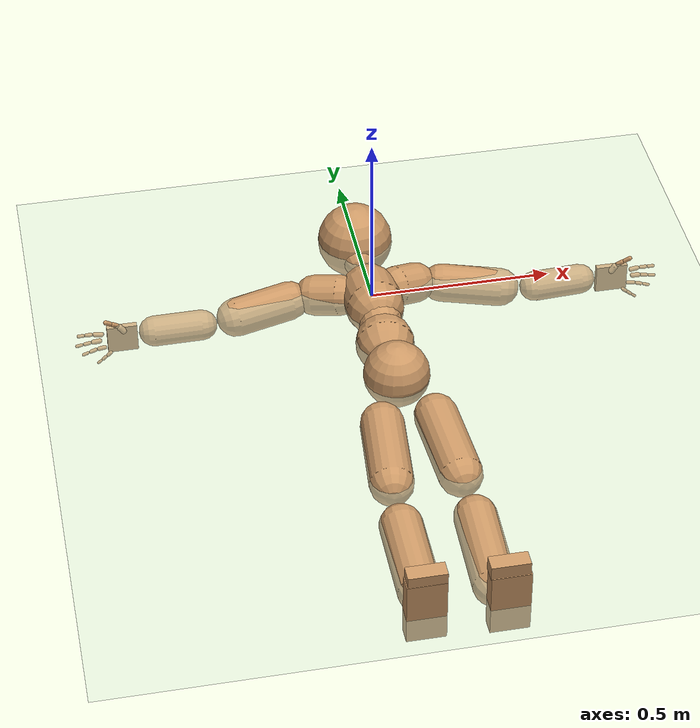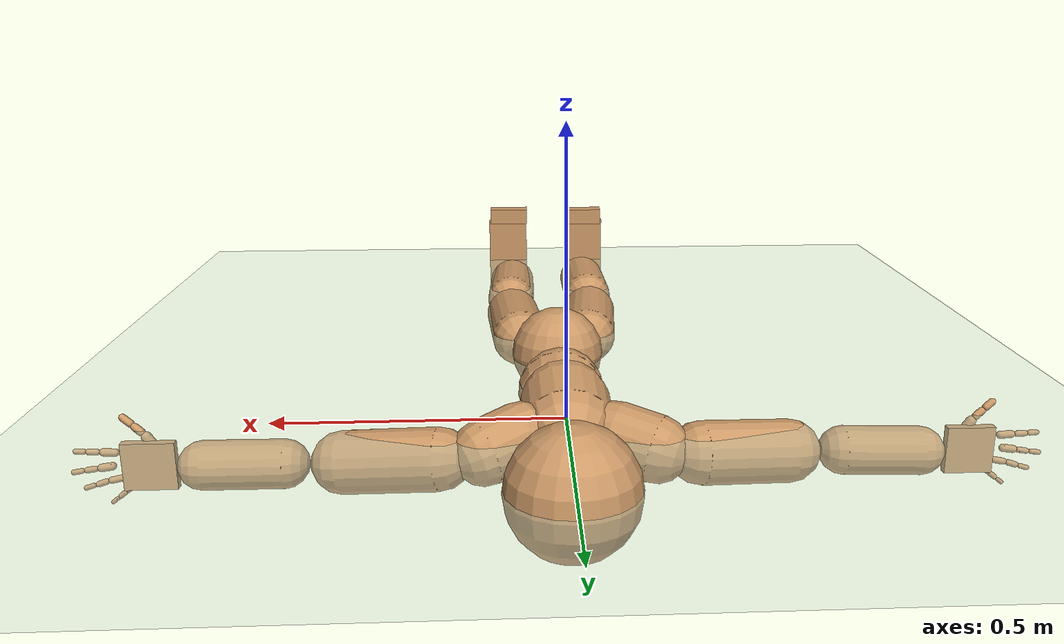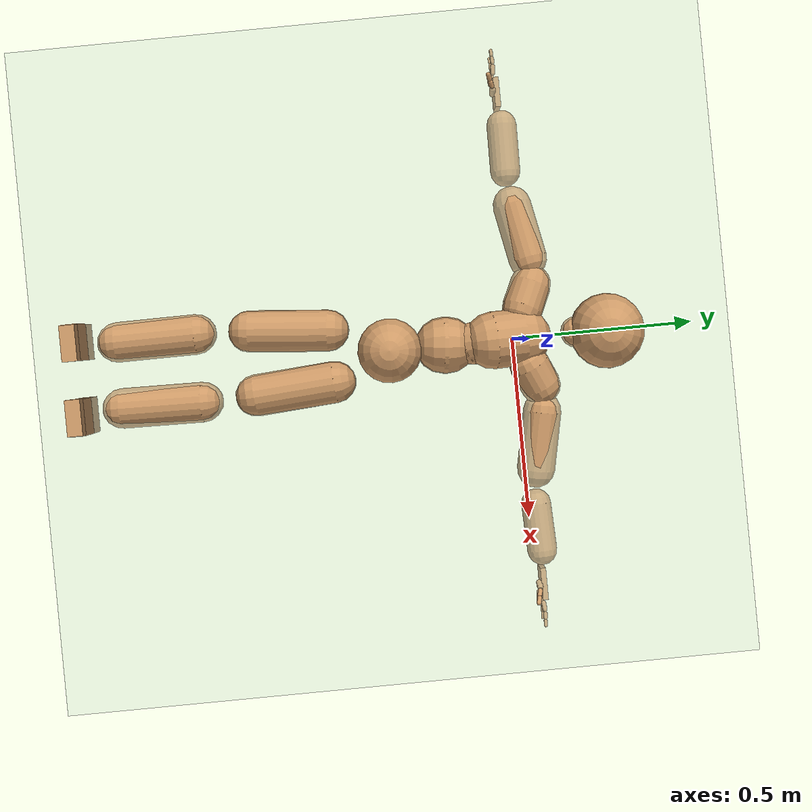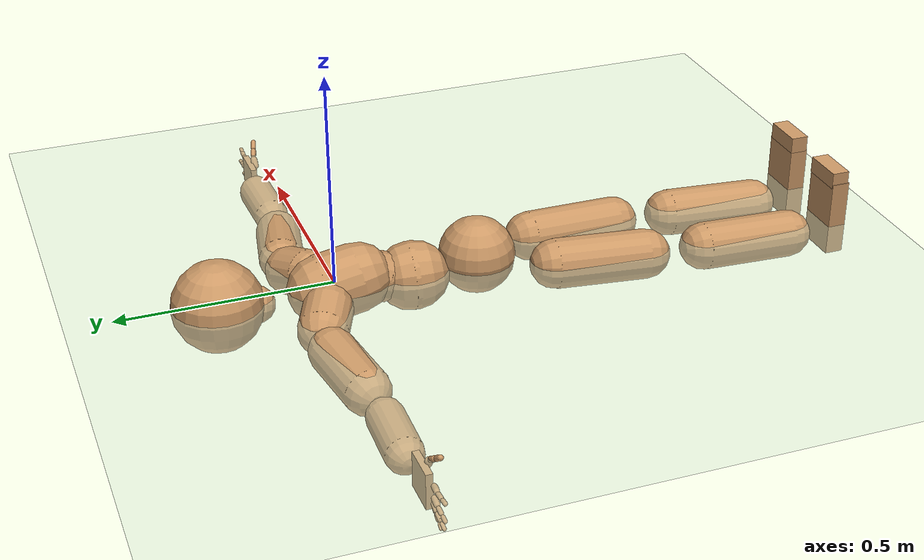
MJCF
<?xml version='1.0' encoding='utf-8'?>
<mujoco model="smplx_mapped_s79">
  <compiler coordinate="local" />
  <default>
    <joint damping="0.0" armature="0.01" stiffness="0.0" limited="true" />
    <geom conaffinity="1" condim="3" contype="7" margin="0.001" rgba="0.8 0.6 .4 1" />
  </default>
  <asset>
    <texture type="skybox" builtin="gradient" rgb1=".4 .5 .6" rgb2="0 0 0" width="100" height="100" />
    <texture builtin="flat" height="1278" mark="cross" markrgb="1 1 1" name="texgeom" random="0.01" rgb1="0.8 0.6 0.4" rgb2="0.8 0.6 0.4" type="cube" width="127" />
    <texture builtin="checker" height="100" name="texplane" rgb1="0 0 0" rgb2="0.8 0.8 0.8" type="2d" width="100" />
    <material name="MatPlane" reflectance="0.5" shininess="1" specular="1" texrepeat="60 60" texture="texplane" />
    <material name="geom" texture="texgeom" texuniform="true" />
  </asset>
  <worldbody>
    <light cutoff="100" diffuse="1 1 1" dir="-0 0 -1.3" directional="true" exponent="1" pos="0 0 1.3" specular=".1 .1 .1" />
    <geom conaffinity="1" condim="3" name="floor" pos="0 0 0" rgba="0.8 0.9 0.8 1" size="100 100 .2" type="plane" material="MatPlane" />
    <body name="Pelvis" pos="0.0005 -0.3426 0.0059">
      <freejoint name="Pelvis" />
      <geom type="sphere" contype="1" conaffinity="1" density="4629.6296296296305" size="0.09" pos="0.0000 0.0000 0.0000" name="Pelvis" />
      <body name="L_Hip" pos="0.0672 -0.0860 -0.0167">
        <joint name="L_Hip_x" type="hinge" pos="0 0 0" axis="1 0 0" stiffness="800" damping="80" armature="0.02" range="-150.00 150.00" />
        <joint name="L_Hip_y" type="hinge" pos="0 0 0" axis="0 1 0" stiffness="800" damping="80" armature="0.02" range="-150.00 150.00" />
        <joint name="L_Hip_z" type="hinge" pos="0 0 0" axis="0 0 1" stiffness="800" damping="80" armature="0.02" range="-150.00 150.00" />
        <geom type="capsule" contype="1" conaffinity="1" density="2040.816327" fromto="0.0055 -0.0745 -0.0031 0.0221 -0.2980 -0.0124" size="0.059" />
        <body name="L_Knee" pos="0.0277 -0.3725 -0.0155">
          <joint name="L_Knee_x" type="hinge" pos="0 0 0" axis="1 0 0" stiffness="800" damping="80" armature="0.02" range="-150.00 150.00" />
          <joint name="L_Knee_y" type="hinge" pos="0 0 0" axis="0 1 0" stiffness="800" damping="80" armature="0.02" range="-150.00 150.00" />
          <joint name="L_Knee_z" type="hinge" pos="0 0 0" axis="0 0 1" stiffness="800" damping="80" armature="0.02" range="-150.00 150.00" />
          <geom type="capsule" contype="1" conaffinity="1" density="1234.567901" fromto="-0.0012 -0.0766 -0.0036 -0.0049 -0.3063 -0.0144" size="0.0564" />
          <body name="L_Ankle" pos="-0.0061 -0.3829 -0.0180">
            <joint name="L_Ankle_x" type="hinge" pos="0 0 0" axis="1 0 0" stiffness="800" damping="80" armature="0.02" range="-150.00 150.00" />
            <joint name="L_Ankle_y" type="hinge" pos="0 0 0" axis="0 1 0" stiffness="800" damping="80" armature="0.02" range="-150.00 150.00" />
            <joint name="L_Ankle_z" type="hinge" pos="0 0 0" axis="0 0 1" stiffness="800" damping="80" armature="0.02" range="-150.00 150.00" />
            <geom type="box" contype="1" conaffinity="1" density="1000" pos="0.0115 -0.0234 0.0566" size="0.0502 0.0216 0.0909" quat="1.0000 0.0000 0.0000 0.0000" />
            <body name="L_Toe" pos="0.0205 -0.0442 0.1058">
              <joint name="L_Toe_x" type="hinge" pos="0 0 0" axis="1 0 0" stiffness="500" damping="50" armature="0.02" range="-150.00 150.00" />
              <joint name="L_Toe_y" type="hinge" pos="0 0 0" axis="0 1 0" stiffness="500" damping="50" armature="0.02" range="-150.00 150.00" />
              <joint name="L_Toe_z" type="hinge" pos="0 0 0" axis="0 0 1" stiffness="500" damping="50" armature="0.02" range="-150.00 150.00" />
              <geom type="box" contype="1" conaffinity="1" density="1000" pos="-0.0115 0.0227 0.0576" size="0.0493 0.0209 0.0194" quat="1.0000 0.0000 0.0000 0.0000" />
            </body>
          </body>
        </body>
      </body>
      <body name="R_Hip" pos="-0.0662 -0.0927 -0.0177">
        <joint name="R_Hip_x" type="hinge" pos="0 0 0" axis="1 0 0" stiffness="800" damping="80" armature="0.02" range="-150.00 150.00" />
        <joint name="R_Hip_y" type="hinge" pos="0 0 0" axis="0 1 0" stiffness="800" damping="80" armature="0.02" range="-150.00 150.00" />
        <joint name="R_Hip_z" type="hinge" pos="0 0 0" axis="0 0 1" stiffness="800" damping="80" armature="0.02" range="-150.00 150.00" />
        <geom type="capsule" contype="1" conaffinity="1" density="2040.816327" fromto="-0.0063 -0.0736 -0.0020 -0.0253 -0.2944 -0.0081" size="0.0588" />
        <body name="R_Knee" pos="-0.0316 -0.3681 -0.0102">
          <joint name="R_Knee_x" type="hinge" pos="0 0 0" axis="1 0 0" stiffness="800" damping="80" armature="0.02" range="-150.00 150.00" />
          <joint name="R_Knee_y" type="hinge" pos="0 0 0" axis="0 1 0" stiffness="800" damping="80" armature="0.02" range="-150.00 150.00" />
          <joint name="R_Knee_z" type="hinge" pos="0 0 0" axis="0 0 1" stiffness="800" damping="80" armature="0.02" range="-150.00 150.00" />
          <geom type="capsule" contype="1" conaffinity="1" density="1234.567901" fromto="0.0003 -0.0749 -0.0028 0.0012 -0.2995 -0.0111" size="0.0564" />
          <body name="R_Ankle" pos="0.0015 -0.3744 -0.0139">
            <joint name="R_Ankle_x" type="hinge" pos="0 0 0" axis="1 0 0" stiffness="800" damping="80" armature="0.02" range="-150.00 150.00" />
            <joint name="R_Ankle_y" type="hinge" pos="0 0 0" axis="0 1 0" stiffness="800" damping="80" armature="0.02" range="-150.00 150.00" />
            <joint name="R_Ankle_z" type="hinge" pos="0 0 0" axis="0 0 1" stiffness="800" damping="80" armature="0.02" range="-150.00 150.00" />
            <geom type="box" contype="1" conaffinity="1" density="1000" pos="-0.0091 -0.0250 0.0535" size="0.0502 0.0216 0.0909" quat="1.0000 0.0000 0.0000 0.0000" />
            <body name="R_Toe" pos="-0.0164 -0.0479 0.0996">
              <joint name="R_Toe_x" type="hinge" pos="0 0 0" axis="1 0 0" stiffness="500" damping="50" armature="0.02" range="-150.00 150.00" />
              <joint name="R_Toe_y" type="hinge" pos="0 0 0" axis="0 1 0" stiffness="500" damping="50" armature="0.02" range="-150.00 150.00" />
              <joint name="R_Toe_z" type="hinge" pos="0 0 0" axis="0 0 1" stiffness="500" damping="50" armature="0.02" range="-150.00 150.00" />
              <geom type="box" contype="1" conaffinity="1" density="1000" pos="0.0091 0.0243 0.0545" size="0.0493 0.0209 0.0194" quat="1.0000 0.0000 0.0000 0.0000" />
            </body>
          </body>
        </body>
      </body>
      <body name="Torso" pos="-0.0055 0.0987 -0.0229">
        <joint name="Torso_x" type="hinge" pos="0 0 0" axis="1 0 0" stiffness="1000" damping="100" armature="0.02" range="-150.00 150.00" />
        <joint name="Torso_y" type="hinge" pos="0 0 0" axis="0 1 0" stiffness="1000" damping="100" armature="0.02" range="-150.00 150.00" />
        <joint name="Torso_z" type="hinge" pos="0 0 0" axis="0 0 1" stiffness="1000" damping="100" armature="0.02" range="-150.00 150.00" />
        <geom type="capsule" contype="1" conaffinity="1" density="1100" fromto="0.0046 0.0522 -0.0019 0.0056 0.0638 -0.0023" size="0.08" />
        <body name="Spine" pos="0.0102 0.1160 -0.0042">
          <joint name="Spine_x" type="hinge" pos="0 0 0" axis="1 0 0" stiffness="1000" damping="100" armature="0.02" range="-150.00 150.00" />
          <joint name="Spine_y" type="hinge" pos="0 0 0" axis="0 1 0" stiffness="1000" damping="100" armature="0.02" range="-150.00 150.00" />
          <joint name="Spine_z" type="hinge" pos="0 0 0" axis="0 0 1" stiffness="1000" damping="100" armature="0.02" range="-150.00 150.00" />
          <geom type="capsule" contype="1" conaffinity="1" density="1100" fromto="-0.0024 0.0203 0.0130 -0.0030 0.0248 0.0159" size="0.06" />
          <body name="Chest" pos="-0.0054 0.0451 0.0289">
            <joint name="Chest_x" type="hinge" pos="0 0 0" axis="1 0 0" stiffness="1000" damping="100" armature="0.02" range="-150.00 150.00" />
            <joint name="Chest_y" type="hinge" pos="0 0 0" axis="0 1 0" stiffness="1000" damping="100" armature="0.02" range="-150.00 150.00" />
            <joint name="Chest_z" type="hinge" pos="0 0 0" axis="0 0 1" stiffness="1000" damping="100" armature="0.02" range="-150.00 150.00" />
            <geom type="capsule" contype="1" conaffinity="1" density="1100" fromto="-0.0006 0.0281 -0.0046 -0.0025 0.1124 -0.0185" size="0.08" />
            <body name="Neck" pos="-0.0062 0.1953 -0.0366">
              <joint name="Neck_x" type="hinge" pos="0 0 0" axis="1 0 0" stiffness="500" damping="50" armature="0.02" range="-150.00 150.00" />
              <joint name="Neck_y" type="hinge" pos="0 0 0" axis="0 1 0" stiffness="500" damping="50" armature="0.02" range="-150.00 150.00" />
              <joint name="Neck_z" type="hinge" pos="0 0 0" axis="0 0 1" stiffness="500" damping="50" armature="0.02" range="-150.00 150.00" />
              <geom type="capsule" contype="1" conaffinity="1" density="1000" fromto="0.0041 0.0695 0.0090 0.0050 0.0849 0.0111" size="0.0437" />
              <body name="Head" pos="0.0092 0.1544 0.0201">
                <joint name="Head_x" type="hinge" pos="0 0 0" axis="1 0 0" stiffness="500" damping="50" armature="0.02" range="-150.00 150.00" />
                <joint name="Head_y" type="hinge" pos="0 0 0" axis="0 1 0" stiffness="500" damping="50" armature="0.02" range="-150.00 150.00" />
                <joint name="Head_z" type="hinge" pos="0 0 0" axis="0 0 1" stiffness="500" damping="50" armature="0.02" range="-150.00 150.00" />
                <geom type="sphere" contype="1" conaffinity="1" density="1000" size="0.1054" pos="0.0000 0.0000 0.0000" name="Head" />
              </body>
            </body>
            <body name="L_Thorax" pos="0.0569 0.1152 -0.0134">
              <joint name="L_Thorax_x" type="hinge" pos="0 0 0" axis="1 0 0" stiffness="500" damping="50" armature="0.02" range="-150.00 150.00" />
              <joint name="L_Thorax_y" type="hinge" pos="0 0 0" axis="0 1 0" stiffness="500" damping="50" armature="0.02" range="-150.00 150.00" />
              <joint name="L_Thorax_z" type="hinge" pos="0 0 0" axis="0 0 1" stiffness="500" damping="50" armature="0.02" range="-150.00 150.00" />
              <geom type="capsule" contype="1" conaffinity="1" density="1000" fromto="0.0199 0.0093 -0.0058 0.0798 0.0373 -0.0233" size="0.0564" />
              <body name="L_Shoulder" pos="0.0997 0.0466 -0.0291">
                <joint name="L_Shoulder_x" type="hinge" pos="0 0 0" axis="1 0 0" stiffness="500" damping="50" armature="0.02" range="-150.00 150.00" />
                <joint name="L_Shoulder_y" type="hinge" pos="0 0 0" axis="0 1 0" stiffness="500" damping="50" armature="0.02" range="-150.00 150.00" />
                <joint name="L_Shoulder_z" type="hinge" pos="0 0 0" axis="0 0 1" stiffness="500" damping="50" armature="0.02" range="-150.00 150.00" />
                <geom type="capsule" contype="1" conaffinity="1" density="1000" fromto="0.0542 -0.0105 -0.0053 0.2166 -0.0421 -0.0213" size="0.0533" />
                <body name="L_Elbow" pos="0.2708 -0.0526 -0.0266">
                  <joint name="L_Elbow_x" type="hinge" pos="0 0 0" axis="1 0 0" stiffness="500" damping="50" armature="0.02" range="-150.00 150.00" />
                  <joint name="L_Elbow_y" type="hinge" pos="0 0 0" axis="0 1 0" stiffness="500" damping="50" armature="0.02" range="-150.00 150.00" />
                  <joint name="L_Elbow_z" type="hinge" pos="0 0 0" axis="0 0 1" stiffness="500" damping="50" armature="0.02" range="-150.00 150.00" />
                  <geom type="capsule" contype="1" conaffinity="1" density="1000" fromto="0.0441 0.0016 0.0008 0.1763 0.0064 0.0033" size="0.0418" />
                  <body name="L_Wrist" pos="0.2203 0.0081 0.0041">
                    <joint name="L_Wrist_x" type="hinge" pos="0 0 0" axis="1 0 0" stiffness="300" damping="30" armature="0.02" range="-150.00 150.00" />
                    <joint name="L_Wrist_y" type="hinge" pos="0 0 0" axis="0 1 0" stiffness="300" damping="30" armature="0.02" range="-150.00 150.00" />
                    <joint name="L_Wrist_z" type="hinge" pos="0 0 0" axis="0 0 1" stiffness="300" damping="30" armature="0.02" range="-150.00 150.00" />
                    <geom type="box" contype="1" conaffinity="1" density="1000" pos="0.0456 -0.0084 -0.0022" size="0.0444 0.0076 0.0414" quat="1.0000 0.0000 0.0000 0.0000" />
                    <body name="L_Index1" pos="0.0960 -0.0143 0.0191">
                      <joint name="L_Index1_x" type="hinge" pos="0 0 0" axis="1 0 0" stiffness="100" damping="10" armature="0.02" range="-25.78 22.04" />
                      <joint name="L_Index1_y" type="hinge" pos="0 0 0" axis="0 1 0" stiffness="100" damping="10" armature="0.02" range="-11.88 38.72" />
                      <joint name="L_Index1_z" type="hinge" pos="0 0 0" axis="0 0 1" stiffness="100" damping="10" armature="0.02" range="-100.14 36.73" />
                      <geom type="capsule" contype="1" conaffinity="1" density="1000" fromto="0.0061 0.0006 0.0006 0.0245 0.0022 0.0023" size="0.0065" />
                      <body name="L_Index2" pos="0.0307 0.0028 0.0028">
                        <joint name="L_Index2_x" type="hinge" pos="0 0 0" axis="1 0 0" stiffness="100" damping="10" armature="0.02" range="-17.95 16.92" />
                        <joint name="L_Index2_y" type="hinge" pos="0 0 0" axis="0 1 0" stiffness="100" damping="10" armature="0.02" range="-14.71 13.03" />
                        <joint name="L_Index2_z" type="hinge" pos="0 0 0" axis="0 0 1" stiffness="100" damping="10" armature="0.02" range="-111.25 10.70" />
                        <geom type="capsule" contype="1" conaffinity="1" density="1000" fromto="0.0043 -0.0003 0.0001 0.0174 -0.0010 0.0006" size="0.0053" />
                        <body name="L_Index3" pos="0.0217 -0.0013 0.0007">
                          <joint name="L_Index3_x" type="hinge" pos="0 0 0" axis="1 0 0" stiffness="100" damping="10" armature="0.02" range="-19.18 20.30" />
                          <joint name="L_Index3_y" type="hinge" pos="0 0 0" axis="0 1 0" stiffness="100" damping="10" armature="0.02" range="-18.00 13.62" />
                          <joint name="L_Index3_z" type="hinge" pos="0 0 0" axis="0 0 1" stiffness="100" damping="10" armature="0.02" range="-60.19 51.54" />
                          <geom type="capsule" contype="1" conaffinity="1" density="1000" fromto="0.0045 -0.0003 0.0001 0.0172 -0.0010 0.0006" size="0.0047" />
                        </body>
                      </body>
                    </body>
                    <body name="L_Middle1" pos="0.1027 -0.0118 -0.0030">
                      <joint name="L_Middle1_x" type="hinge" pos="0 0 0" axis="1 0 0" stiffness="100" damping="10" armature="0.02" range="-37.36 22.46" />
                      <joint name="L_Middle1_y" type="hinge" pos="0 0 0" axis="0 1 0" stiffness="100" damping="10" armature="0.02" range="-42.85 37.79" />
                      <joint name="L_Middle1_z" type="hinge" pos="0 0 0" axis="0 0 1" stiffness="100" damping="10" armature="0.02" range="-119.29 43.86" />
                      <geom type="capsule" contype="1" conaffinity="1" density="1000" fromto="0.0058 0.0003 -0.0007 0.0232 0.0011 -0.0029" size="0.0067" />
                      <body name="L_Middle2" pos="0.0290 0.0014 -0.0037">
                        <joint name="L_Middle2_x" type="hinge" pos="0 0 0" axis="1 0 0" stiffness="100" damping="10" armature="0.02" range="-17.26 16.16" />
                        <joint name="L_Middle2_y" type="hinge" pos="0 0 0" axis="0 1 0" stiffness="100" damping="10" armature="0.02" range="-14.56 13.31" />
                        <joint name="L_Middle2_z" type="hinge" pos="0 0 0" axis="0 0 1" stiffness="100" damping="10" armature="0.02" range="-100.60 10.35" />
                        <geom type="capsule" contype="1" conaffinity="1" density="1000" fromto="0.0045 -0.0001 -0.0007 0.0180 -0.0004 -0.0029" size="0.0050" />
                        <body name="L_Middle3" pos="0.0225 -0.0005 -0.0036">
                          <joint name="L_Middle3_x" type="hinge" pos="0 0 0" axis="1 0 0" stiffness="100" damping="10" armature="0.02" range="-17.34 18.49" />
                          <joint name="L_Middle3_y" type="hinge" pos="0 0 0" axis="0 1 0" stiffness="100" damping="10" armature="0.02" range="-15.13 14.88" />
                          <joint name="L_Middle3_z" type="hinge" pos="0 0 0" axis="0 0 1" stiffness="100" damping="10" armature="0.02" range="-61.85 51.20" />
                          <geom type="capsule" contype="1" conaffinity="1" density="1000" fromto="0.0046 -0.0001 -0.0007 0.0180 -0.0004 -0.0028" size="0.0045" />
                        </body>
                      </body>
                    </body>
                    <body name="L_Pinky1" pos="0.0783 -0.0193 -0.0410">
                      <joint name="L_Pinky1_x" type="hinge" pos="0 0 0" axis="1 0 0" stiffness="100" damping="10" armature="0.02" range="-79.75 21.14" />
                      <joint name="L_Pinky1_y" type="hinge" pos="0 0 0" axis="0 1 0" stiffness="100" damping="10" armature="0.02" range="-41.50 45.42" />
                      <joint name="L_Pinky1_z" type="hinge" pos="0 0 0" axis="0 0 1" stiffness="100" damping="10" armature="0.02" range="-112.93 33.63" />
                      <geom type="capsule" contype="1" conaffinity="1" density="1000" fromto="0.0028 -0.0001 -0.0024 0.0112 -0.0004 -0.0094" size="0.0050" />
                      <body name="L_Pinky2" pos="0.0140 -0.0004 -0.0118">
                        <joint name="L_Pinky2_x" type="hinge" pos="0 0 0" axis="1 0 0" stiffness="100" damping="10" armature="0.02" range="-22.28 12.09" />
                        <joint name="L_Pinky2_y" type="hinge" pos="0 0 0" axis="0 1 0" stiffness="100" damping="10" armature="0.02" range="-12.50 17.79" />
                        <joint name="L_Pinky2_z" type="hinge" pos="0 0 0" axis="0 0 1" stiffness="100" damping="10" armature="0.02" range="-120.29 13.29" />
                        <geom type="capsule" contype="1" conaffinity="1" density="1000" fromto="0.0029 -0.0002 -0.0023 0.0114 -0.0006 -0.0091" size="0.0045" />
                        <body name="L_Pinky3" pos="0.0143 -0.0008 -0.0114">
                          <joint name="L_Pinky3_x" type="hinge" pos="0 0 0" axis="1 0 0" stiffness="100" damping="10" armature="0.02" range="-20.19 130.76" />
                          <joint name="L_Pinky3_y" type="hinge" pos="0 0 0" axis="0 1 0" stiffness="100" damping="10" armature="0.02" range="-13.40 104.90" />
                          <joint name="L_Pinky3_z" type="hinge" pos="0 0 0" axis="0 0 1" stiffness="100" damping="10" armature="0.02" range="-79.33 91.00" />
                          <geom type="capsule" contype="1" conaffinity="1" density="1000" fromto="0.0030 -0.0002 -0.0024 0.0113 -0.0006 -0.0090" size="0.0036" />
                        </body>
                      </body>
                    </body>
                    <body name="L_Ring1" pos="0.0911 -0.0144 -0.0254">
                      <joint name="L_Ring1_x" type="hinge" pos="0 0 0" axis="1 0 0" stiffness="100" damping="10" armature="0.02" range="-54.83 24.79" />
                      <joint name="L_Ring1_y" type="hinge" pos="0 0 0" axis="0 1 0" stiffness="100" damping="10" armature="0.02" range="-27.28 40.42" />
                      <joint name="L_Ring1_z" type="hinge" pos="0 0 0" axis="0 0 1" stiffness="100" damping="10" armature="0.02" range="-119.24 23.67" />
                      <geom type="capsule" contype="1" conaffinity="1" density="1000" fromto="0.0053 0.0003 -0.0011 0.0212 0.0013 -0.0042" size="0.0057" />
                      <body name="L_Ring2" pos="0.0265 0.0016 -0.0053">
                        <joint name="L_Ring2_x" type="hinge" pos="0 0 0" axis="1 0 0" stiffness="100" damping="10" armature="0.02" range="-19.64 14.40" />
                        <joint name="L_Ring2_y" type="hinge" pos="0 0 0" axis="0 1 0" stiffness="100" damping="10" armature="0.02" range="-16.20 15.12" />
                        <joint name="L_Ring2_z" type="hinge" pos="0 0 0" axis="0 0 1" stiffness="100" damping="10" armature="0.02" range="-113.79 10.28" />
                        <geom type="capsule" contype="1" conaffinity="1" density="1000" fromto="0.0043 -0.0002 -0.0014 0.0174 -0.0008 -0.0056" size="0.0051" />
                        <body name="L_Ring3" pos="0.0217 -0.0010 -0.0070">
                          <joint name="L_Ring3_x" type="hinge" pos="0 0 0" axis="1 0 0" stiffness="100" damping="10" armature="0.02" range="-20.00 15.88" />
                          <joint name="L_Ring3_y" type="hinge" pos="0 0 0" axis="0 1 0" stiffness="100" damping="10" armature="0.02" range="-14.38 19.35" />
                          <joint name="L_Ring3_z" type="hinge" pos="0 0 0" axis="0 0 1" stiffness="100" damping="10" armature="0.02" range="-75.78 32.31" />
                          <geom type="capsule" contype="1" conaffinity="1" density="1000" fromto="0.0045 -0.0002 -0.0014 0.0172 -0.0008 -0.0055" size="0.0043" />
                        </body>
                      </body>
                    </body>
                    <body name="L_Thumb1" pos="0.0389 -0.0217 0.0253">
                      <joint name="L_Thumb1_x" type="hinge" pos="0 0 0" axis="1 0 0" stiffness="100" damping="10" armature="0.02" range="47.61 118.01" />
                      <joint name="L_Thumb1_y" type="hinge" pos="0 0 0" axis="0 1 0" stiffness="100" damping="10" armature="0.02" range="-41.12 26.03" />
                      <joint name="L_Thumb1_z" type="hinge" pos="0 0 0" axis="0 0 1" stiffness="100" damping="10" armature="0.02" range="-19.20 46.43" />
                      <geom type="capsule" contype="1" conaffinity="1" density="1000" fromto="0.0032 0.0001 0.0047 0.0127 0.0005 0.0187" size="0.0086" />
                      <body name="L_Thumb2" pos="0.0159 0.0006 0.0234">
                        <joint name="L_Thumb2_x" type="hinge" pos="0 0 0" axis="1 0 0" stiffness="100" damping="10" armature="0.02" range="-20.06 17.26" />
                        <joint name="L_Thumb2_y" type="hinge" pos="0 0 0" axis="0 1 0" stiffness="100" damping="10" armature="0.02" range="-12.15 13.06" />
                        <joint name="L_Thumb2_z" type="hinge" pos="0 0 0" axis="0 0 1" stiffness="100" damping="10" armature="0.02" range="-29.30 11.80" />
                        <geom type="capsule" contype="1" conaffinity="1" density="1000" fromto="0.0039 -0.0011 0.0028 0.0154 -0.0045 0.0113" size="0.0065" />
                        <body name="L_Thumb3" pos="0.0193 -0.0056 0.0141">
                          <joint name="L_Thumb3_x" type="hinge" pos="0 0 0" axis="1 0 0" stiffness="100" damping="10" armature="0.02" range="-22.51 18.61" />
                          <joint name="L_Thumb3_y" type="hinge" pos="0 0 0" axis="0 1 0" stiffness="100" damping="10" armature="0.02" range="-13.06 13.86" />
                          <joint name="L_Thumb3_z" type="hinge" pos="0 0 0" axis="0 0 1" stiffness="100" damping="10" armature="0.02" range="-28.36 59.81" />
                          <geom type="capsule" contype="1" conaffinity="1" density="1000" fromto="0.0031 -0.0009 0.0023 0.0162 -0.0047 0.0118" size="0.0062" />
                        </body>
                      </body>
                    </body>
                  </body>
                </body>
              </body>
            </body>
            <body name="R_Thorax" pos="-0.0600 0.1109 -0.0195">
              <joint name="R_Thorax_x" type="hinge" pos="0 0 0" axis="1 0 0" stiffness="500" damping="50" armature="0.02" range="-150.00 150.00" />
              <joint name="R_Thorax_y" type="hinge" pos="0 0 0" axis="0 1 0" stiffness="500" damping="50" armature="0.02" range="-150.00 150.00" />
              <joint name="R_Thorax_z" type="hinge" pos="0 0 0" axis="0 0 1" stiffness="500" damping="50" armature="0.02" range="-150.00 150.00" />
              <geom type="capsule" contype="1" conaffinity="1" density="1000" fromto="-0.0216 0.0101 -0.0045 -0.0862 0.0403 -0.0181" size="0.0576" />
              <body name="R_Shoulder" pos="-0.1078 0.0504 -0.0226">
                <joint name="R_Shoulder_x" type="hinge" pos="0 0 0" axis="1 0 0" stiffness="500" damping="50" armature="0.02" range="-150.00 150.00" />
                <joint name="R_Shoulder_y" type="hinge" pos="0 0 0" axis="0 1 0" stiffness="500" damping="50" armature="0.02" range="-150.00 150.00" />
                <joint name="R_Shoulder_z" type="hinge" pos="0 0 0" axis="0 0 1" stiffness="500" damping="50" armature="0.02" range="-150.00 150.00" />
                <geom type="capsule" contype="1" conaffinity="1" density="1000" fromto="-0.0519 -0.0097 -0.0039 -0.2075 -0.0388 -0.0157" size="0.0538" />
                <body name="R_Elbow" pos="-0.2594 -0.0485 -0.0196">
                  <joint name="R_Elbow_x" type="hinge" pos="0 0 0" axis="1 0 0" stiffness="500" damping="50" armature="0.02" range="-150.00 150.00" />
                  <joint name="R_Elbow_y" type="hinge" pos="0 0 0" axis="0 1 0" stiffness="500" damping="50" armature="0.02" range="-150.00 150.00" />
                  <joint name="R_Elbow_z" type="hinge" pos="0 0 0" axis="0 0 1" stiffness="500" damping="50" armature="0.02" range="-150.00 150.00" />
                  <geom type="capsule" contype="1" conaffinity="1" density="1000" fromto="-0.0442 0.0007 -0.0010 -0.1769 0.0030 -0.0039" size="0.042" />
                  <body name="R_Wrist" pos="-0.2212 0.0037 -0.0048">
                    <joint name="R_Wrist_x" type="hinge" pos="0 0 0" axis="1 0 0" stiffness="300" damping="30" armature="0.02" range="-150.00 150.00" />
                    <joint name="R_Wrist_y" type="hinge" pos="0 0 0" axis="0 1 0" stiffness="300" damping="30" armature="0.02" range="-150.00 150.00" />
                    <joint name="R_Wrist_z" type="hinge" pos="0 0 0" axis="0 0 1" stiffness="300" damping="30" armature="0.02" range="-150.00 150.00" />
                    <geom type="box" contype="1" conaffinity="1" density="1000" pos="-0.0449 -0.0080 -0.0014" size="0.0416 0.0078 0.0414" quat="1.0000 0.0000 0.0000 0.0000" />
                    <body name="R_Index1" pos="-0.0949 -0.0135 0.0206">
                      <joint name="R_Index1_x" type="hinge" pos="0 0 0" axis="1 0 0" stiffness="100" damping="10" armature="0.02" range="-29.86 22.91" />
                      <joint name="R_Index1_y" type="hinge" pos="0 0 0" axis="0 1 0" stiffness="100" damping="10" armature="0.02" range="-45.08 23.07" />
                      <joint name="R_Index1_z" type="hinge" pos="0 0 0" axis="0 0 1" stiffness="100" damping="10" armature="0.02" range="-38.91 93.70" />
                      <geom type="capsule" contype="1" conaffinity="1" density="1000" fromto="-0.0061 0.0006 0.0006 -0.0245 0.0022 0.0023" size="0.0065" />
                      <body name="R_Index2" pos="-0.0307 0.0028 0.0028">
                        <joint name="R_Index2_x" type="hinge" pos="0 0 0" axis="1 0 0" stiffness="100" damping="10" armature="0.02" range="-20.04 16.60" />
                        <joint name="R_Index2_y" type="hinge" pos="0 0 0" axis="0 1 0" stiffness="100" damping="10" armature="0.02" range="-14.16 15.06" />
                        <joint name="R_Index2_z" type="hinge" pos="0 0 0" axis="0 0 1" stiffness="100" damping="10" armature="0.02" range="-10.85 117.32" />
                        <geom type="capsule" contype="1" conaffinity="1" density="1000" fromto="-0.0043 -0.0003 0.0001 -0.0174 -0.0010 0.0006" size="0.0053" />
                        <body name="R_Index3" pos="-0.0217 -0.0013 0.0007">
                          <joint name="R_Index3_x" type="hinge" pos="0 0 0" axis="1 0 0" stiffness="100" damping="10" armature="0.02" range="-20.36 17.03" />
                          <joint name="R_Index3_y" type="hinge" pos="0 0 0" axis="0 1 0" stiffness="100" damping="10" armature="0.02" range="-16.60 21.08" />
                          <joint name="R_Index3_z" type="hinge" pos="0 0 0" axis="0 0 1" stiffness="100" damping="10" armature="0.02" range="-61.66 81.69" />
                          <geom type="capsule" contype="1" conaffinity="1" density="1000" fromto="-0.0049 -0.0003 0.0002 -0.0168 -0.0010 0.0005" size="0.0048" />
                        </body>
                      </body>
                    </body>
                    <body name="R_Middle1" pos="-0.1017 -0.0110 -0.0015">
                      <joint name="R_Middle1_x" type="hinge" pos="0 0 0" axis="1 0 0" stiffness="100" damping="10" armature="0.02" range="-40.71 21.10" />
                      <joint name="R_Middle1_y" type="hinge" pos="0 0 0" axis="0 1 0" stiffness="100" damping="10" armature="0.02" range="-42.50 36.40" />
                      <joint name="R_Middle1_z" type="hinge" pos="0 0 0" axis="0 0 1" stiffness="100" damping="10" armature="0.02" range="-47.31 107.33" />
                      <geom type="capsule" contype="1" conaffinity="1" density="1000" fromto="-0.0058 0.0003 -0.0007 -0.0232 0.0011 -0.0029" size="0.0067" />
                      <body name="R_Middle2" pos="-0.0290 0.0014 -0.0037">
                        <joint name="R_Middle2_x" type="hinge" pos="0 0 0" axis="1 0 0" stiffness="100" damping="10" armature="0.02" range="-17.52 16.49" />
                        <joint name="R_Middle2_y" type="hinge" pos="0 0 0" axis="0 1 0" stiffness="100" damping="10" armature="0.02" range="-15.37 13.21" />
                        <joint name="R_Middle2_z" type="hinge" pos="0 0 0" axis="0 0 1" stiffness="100" damping="10" armature="0.02" range="-11.04 105.37" />
                        <geom type="capsule" contype="1" conaffinity="1" density="1000" fromto="-0.0045 -0.0001 -0.0007 -0.0180 -0.0004 -0.0029" size="0.0050" />
                        <body name="R_Middle3" pos="-0.0225 -0.0005 -0.0036">
                          <joint name="R_Middle3_x" type="hinge" pos="0 0 0" axis="1 0 0" stiffness="100" damping="10" armature="0.02" range="-17.54 18.24" />
                          <joint name="R_Middle3_y" type="hinge" pos="0 0 0" axis="0 1 0" stiffness="100" damping="10" armature="0.02" range="-15.32 13.09" />
                          <joint name="R_Middle3_z" type="hinge" pos="0 0 0" axis="0 0 1" stiffness="100" damping="10" armature="0.02" range="-56.67 67.63" />
                          <geom type="capsule" contype="1" conaffinity="1" density="1000" fromto="-0.0049 -0.0001 -0.0008 -0.0176 -0.0004 -0.0028" size="0.0045" />
                        </body>
                      </body>
                    </body>
                    <body name="R_Pinky1" pos="-0.0773 -0.0185 -0.0396">
                      <joint name="R_Pinky1_x" type="hinge" pos="0 0 0" axis="1 0 0" stiffness="100" damping="10" armature="0.02" range="-64.79 14.50" />
                      <joint name="R_Pinky1_y" type="hinge" pos="0 0 0" axis="0 1 0" stiffness="100" damping="10" armature="0.02" range="-51.84 51.07" />
                      <joint name="R_Pinky1_z" type="hinge" pos="0 0 0" axis="0 0 1" stiffness="100" damping="10" armature="0.02" range="-75.84 95.95" />
                      <geom type="capsule" contype="1" conaffinity="1" density="1000" fromto="-0.0028 -0.0001 -0.0024 -0.0112 -0.0004 -0.0094" size="0.0050" />
                      <body name="R_Pinky2" pos="-0.0140 -0.0004 -0.0118">
                        <joint name="R_Pinky2_x" type="hinge" pos="0 0 0" axis="1 0 0" stiffness="100" damping="10" armature="0.02" range="-21.09 12.11" />
                        <joint name="R_Pinky2_y" type="hinge" pos="0 0 0" axis="0 1 0" stiffness="100" damping="10" armature="0.02" range="-20.62 13.11" />
                        <joint name="R_Pinky2_z" type="hinge" pos="0 0 0" axis="0 0 1" stiffness="100" damping="10" armature="0.02" range="-10.77 120.96" />
                        <geom type="capsule" contype="1" conaffinity="1" density="1000" fromto="-0.0029 -0.0002 -0.0023 -0.0114 -0.0006 -0.0091" size="0.0045" />
                        <body name="R_Pinky3" pos="-0.0143 -0.0008 -0.0114">
                          <joint name="R_Pinky3_x" type="hinge" pos="0 0 0" axis="1 0 0" stiffness="100" damping="10" armature="0.02" range="-21.07 15.06" />
                          <joint name="R_Pinky3_y" type="hinge" pos="0 0 0" axis="0 1 0" stiffness="100" damping="10" armature="0.02" range="-20.35 13.96" />
                          <joint name="R_Pinky3_z" type="hinge" pos="0 0 0" axis="0 0 1" stiffness="100" damping="10" armature="0.02" range="-16.27 79.16" />
                          <geom type="capsule" contype="1" conaffinity="1" density="1000" fromto="-0.0032 -0.0002 -0.0025 -0.0111 -0.0006 -0.0088" size="0.0036" />
                        </body>
                      </body>
                    </body>
                    <body name="R_Ring1" pos="-0.0901 -0.0136 -0.0240">
                      <joint name="R_Ring1_x" type="hinge" pos="0 0 0" axis="1 0 0" stiffness="100" damping="10" armature="0.02" range="-43.68 20.28" />
                      <joint name="R_Ring1_y" type="hinge" pos="0 0 0" axis="0 1 0" stiffness="100" damping="10" armature="0.02" range="-41.27 33.80" />
                      <joint name="R_Ring1_z" type="hinge" pos="0 0 0" axis="0 0 1" stiffness="100" damping="10" armature="0.02" range="-40.07 112.73" />
                      <geom type="capsule" contype="1" conaffinity="1" density="1000" fromto="-0.0053 0.0003 -0.0011 -0.0212 0.0013 -0.0042" size="0.0057" />
                      <body name="R_Ring2" pos="-0.0265 0.0016 -0.0053">
                        <joint name="R_Ring2_x" type="hinge" pos="0 0 0" axis="1 0 0" stiffness="100" damping="10" armature="0.02" range="-18.42 14.08" />
                        <joint name="R_Ring2_y" type="hinge" pos="0 0 0" axis="0 1 0" stiffness="100" damping="10" armature="0.02" range="-16.11 12.81" />
                        <joint name="R_Ring2_z" type="hinge" pos="0 0 0" axis="0 0 1" stiffness="100" damping="10" armature="0.02" range="-11.56 113.77" />
                        <geom type="capsule" contype="1" conaffinity="1" density="1000" fromto="-0.0043 -0.0002 -0.0014 -0.0174 -0.0008 -0.0056" size="0.0051" />
                        <body name="R_Ring3" pos="-0.0217 -0.0010 -0.0070">
                          <joint name="R_Ring3_x" type="hinge" pos="0 0 0" axis="1 0 0" stiffness="100" damping="10" armature="0.02" range="-19.25 12.69" />
                          <joint name="R_Ring3_y" type="hinge" pos="0 0 0" axis="0 1 0" stiffness="100" damping="10" armature="0.02" range="-18.42 13.68" />
                          <joint name="R_Ring3_z" type="hinge" pos="0 0 0" axis="0 0 1" stiffness="100" damping="10" armature="0.02" range="-49.85 75.77" />
                          <geom type="capsule" contype="1" conaffinity="1" density="1000" fromto="-0.0047 -0.0002 -0.0015 -0.0170 -0.0008 -0.0055" size="0.0043" />
                        </body>
                      </body>
                    </body>
                    <body name="R_Thumb1" pos="-0.0379 -0.0209 0.0267">
                      <joint name="R_Thumb1_x" type="hinge" pos="0 0 0" axis="1 0 0" stiffness="100" damping="10" armature="0.02" range="46.78 136.18" />
                      <joint name="R_Thumb1_y" type="hinge" pos="0 0 0" axis="0 1 0" stiffness="100" damping="10" armature="0.02" range="-24.53 37.42" />
                      <joint name="R_Thumb1_z" type="hinge" pos="0 0 0" axis="0 0 1" stiffness="100" damping="10" armature="0.02" range="-59.28 11.67" />
                      <geom type="capsule" contype="1" conaffinity="1" density="1000" fromto="-0.0032 0.0001 0.0047 -0.0127 0.0005 0.0187" size="0.0086" />
                      <body name="R_Thumb2" pos="-0.0159 0.0006 0.0234">
                        <joint name="R_Thumb2_x" type="hinge" pos="0 0 0" axis="1 0 0" stiffness="100" damping="10" armature="0.02" range="-19.71 17.12" />
                        <joint name="R_Thumb2_y" type="hinge" pos="0 0 0" axis="0 1 0" stiffness="100" damping="10" armature="0.02" range="-14.27 13.65" />
                        <joint name="R_Thumb2_z" type="hinge" pos="0 0 0" axis="0 0 1" stiffness="100" damping="10" armature="0.02" range="-9.92 52.34" />
                        <geom type="capsule" contype="1" conaffinity="1" density="1000" fromto="-0.0039 -0.0011 0.0028 -0.0154 -0.0045 0.0113" size="0.0065" />
                        <body name="R_Thumb3" pos="-0.0193 -0.0056 0.0141">
                          <joint name="R_Thumb3_x" type="hinge" pos="0 0 0" axis="1 0 0" stiffness="100" damping="10" armature="0.02" range="-19.40 19.50" />
                          <joint name="R_Thumb3_y" type="hinge" pos="0 0 0" axis="0 1 0" stiffness="100" damping="10" armature="0.02" range="-19.48 11.47" />
                          <joint name="R_Thumb3_z" type="hinge" pos="0 0 0" axis="0 0 1" stiffness="100" damping="10" armature="0.02" range="-58.97 47.49" />
                          <geom type="capsule" contype="1" conaffinity="1" density="1000" fromto="-0.0040 -0.0012 0.0029 -0.0153 -0.0045 0.0112" size="0.0064" />
                        </body>
                      </body>
                    </body>
                  </body>
                </body>
              </body>
            </body>
          </body>
        </body>
      </body>
    </body>
  </worldbody>
  <actuator>
    <motor name="L_Hip_x" joint="L_Hip_x" gear="1" />
    <motor name="L_Hip_y" joint="L_Hip_y" gear="1" />
    <motor name="L_Hip_z" joint="L_Hip_z" gear="1" />
    <motor name="L_Knee_x" joint="L_Knee_x" gear="1" />
    <motor name="L_Knee_y" joint="L_Knee_y" gear="1" />
    <motor name="L_Knee_z" joint="L_Knee_z" gear="1" />
    <motor name="L_Ankle_x" joint="L_Ankle_x" gear="1" />
    <motor name="L_Ankle_y" joint="L_Ankle_y" gear="1" />
    <motor name="L_Ankle_z" joint="L_Ankle_z" gear="1" />
    <motor name="L_Toe_x" joint="L_Toe_x" gear="1" />
    <motor name="L_Toe_y" joint="L_Toe_y" gear="1" />
    <motor name="L_Toe_z" joint="L_Toe_z" gear="1" />
    <motor name="R_Hip_x" joint="R_Hip_x" gear="1" />
    <motor name="R_Hip_y" joint="R_Hip_y" gear="1" />
    <motor name="R_Hip_z" joint="R_Hip_z" gear="1" />
    <motor name="R_Knee_x" joint="R_Knee_x" gear="1" />
    <motor name="R_Knee_y" joint="R_Knee_y" gear="1" />
    <motor name="R_Knee_z" joint="R_Knee_z" gear="1" />
    <motor name="R_Ankle_x" joint="R_Ankle_x" gear="1" />
    <motor name="R_Ankle_y" joint="R_Ankle_y" gear="1" />
    <motor name="R_Ankle_z" joint="R_Ankle_z" gear="1" />
    <motor name="R_Toe_x" joint="R_Toe_x" gear="1" />
    <motor name="R_Toe_y" joint="R_Toe_y" gear="1" />
    <motor name="R_Toe_z" joint="R_Toe_z" gear="1" />
    <motor name="Torso_x" joint="Torso_x" gear="1" />
    <motor name="Torso_y" joint="Torso_y" gear="1" />
    <motor name="Torso_z" joint="Torso_z" gear="1" />
    <motor name="Spine_x" joint="Spine_x" gear="1" />
    <motor name="Spine_y" joint="Spine_y" gear="1" />
    <motor name="Spine_z" joint="Spine_z" gear="1" />
    <motor name="Chest_x" joint="Chest_x" gear="1" />
    <motor name="Chest_y" joint="Chest_y" gear="1" />
    <motor name="Chest_z" joint="Chest_z" gear="1" />
    <motor name="Neck_x" joint="Neck_x" gear="1" />
    <motor name="Neck_y" joint="Neck_y" gear="1" />
    <motor name="Neck_z" joint="Neck_z" gear="1" />
    <motor name="Head_x" joint="Head_x" gear="1" />
    <motor name="Head_y" joint="Head_y" gear="1" />
    <motor name="Head_z" joint="Head_z" gear="1" />
    <motor name="L_Thorax_x" joint="L_Thorax_x" gear="1" />
    <motor name="L_Thorax_y" joint="L_Thorax_y" gear="1" />
    <motor name="L_Thorax_z" joint="L_Thorax_z" gear="1" />
    <motor name="L_Shoulder_x" joint="L_Shoulder_x" gear="1" />
    <motor name="L_Shoulder_y" joint="L_Shoulder_y" gear="1" />
    <motor name="L_Shoulder_z" joint="L_Shoulder_z" gear="1" />
    <motor name="L_Elbow_x" joint="L_Elbow_x" gear="1" />
    <motor name="L_Elbow_y" joint="L_Elbow_y" gear="1" />
    <motor name="L_Elbow_z" joint="L_Elbow_z" gear="1" />
    <motor name="L_Wrist_x" joint="L_Wrist_x" gear="1" />
    <motor name="L_Wrist_y" joint="L_Wrist_y" gear="1" />
    <motor name="L_Wrist_z" joint="L_Wrist_z" gear="1" />
    <motor name="L_Index1_x" joint="L_Index1_x" gear="1" />
    <motor name="L_Index1_y" joint="L_Index1_y" gear="1" />
    <motor name="L_Index1_z" joint="L_Index1_z" gear="1" />
    <motor name="L_Index2_x" joint="L_Index2_x" gear="1" />
    <motor name="L_Index2_y" joint="L_Index2_y" gear="1" />
    <motor name="L_Index2_z" joint="L_Index2_z" gear="1" />
    <motor name="L_Index3_x" joint="L_Index3_x" gear="1" />
    <motor name="L_Index3_y" joint="L_Index3_y" gear="1" />
    <motor name="L_Index3_z" joint="L_Index3_z" gear="1" />
    <motor name="L_Middle1_x" joint="L_Middle1_x" gear="1" />
    <motor name="L_Middle1_y" joint="L_Middle1_y" gear="1" />
    <motor name="L_Middle1_z" joint="L_Middle1_z" gear="1" />
    <motor name="L_Middle2_x" joint="L_Middle2_x" gear="1" />
    <motor name="L_Middle2_y" joint="L_Middle2_y" gear="1" />
    <motor name="L_Middle2_z" joint="L_Middle2_z" gear="1" />
    <motor name="L_Middle3_x" joint="L_Middle3_x" gear="1" />
    <motor name="L_Middle3_y" joint="L_Middle3_y" gear="1" />
    <motor name="L_Middle3_z" joint="L_Middle3_z" gear="1" />
    <motor name="L_Pinky1_x" joint="L_Pinky1_x" gear="1" />
    <motor name="L_Pinky1_y" joint="L_Pinky1_y" gear="1" />
    <motor name="L_Pinky1_z" joint="L_Pinky1_z" gear="1" />
    <motor name="L_Pinky2_x" joint="L_Pinky2_x" gear="1" />
    <motor name="L_Pinky2_y" joint="L_Pinky2_y" gear="1" />
    <motor name="L_Pinky2_z" joint="L_Pinky2_z" gear="1" />
    <motor name="L_Pinky3_x" joint="L_Pinky3_x" gear="1" />
    <motor name="L_Pinky3_y" joint="L_Pinky3_y" gear="1" />
    <motor name="L_Pinky3_z" joint="L_Pinky3_z" gear="1" />
    <motor name="L_Ring1_x" joint="L_Ring1_x" gear="1" />
    <motor name="L_Ring1_y" joint="L_Ring1_y" gear="1" />
    <motor name="L_Ring1_z" joint="L_Ring1_z" gear="1" />
    <motor name="L_Ring2_x" joint="L_Ring2_x" gear="1" />
    <motor name="L_Ring2_y" joint="L_Ring2_y" gear="1" />
    <motor name="L_Ring2_z" joint="L_Ring2_z" gear="1" />
    <motor name="L_Ring3_x" joint="L_Ring3_x" gear="1" />
    <motor name="L_Ring3_y" joint="L_Ring3_y" gear="1" />
    <motor name="L_Ring3_z" joint="L_Ring3_z" gear="1" />
    <motor name="L_Thumb1_x" joint="L_Thumb1_x" gear="1" />
    <motor name="L_Thumb1_y" joint="L_Thumb1_y" gear="1" />
    <motor name="L_Thumb1_z" joint="L_Thumb1_z" gear="1" />
    <motor name="L_Thumb2_x" joint="L_Thumb2_x" gear="1" />
    <motor name="L_Thumb2_y" joint="L_Thumb2_y" gear="1" />
    <motor name="L_Thumb2_z" joint="L_Thumb2_z" gear="1" />
    <motor name="L_Thumb3_x" joint="L_Thumb3_x" gear="1" />
    <motor name="L_Thumb3_y" joint="L_Thumb3_y" gear="1" />
    <motor name="L_Thumb3_z" joint="L_Thumb3_z" gear="1" />
    <motor name="R_Thorax_x" joint="R_Thorax_x" gear="1" />
    <motor name="R_Thorax_y" joint="R_Thorax_y" gear="1" />
    <motor name="R_Thorax_z" joint="R_Thorax_z" gear="1" />
    <motor name="R_Shoulder_x" joint="R_Shoulder_x" gear="1" />
    <motor name="R_Shoulder_y" joint="R_Shoulder_y" gear="1" />
    <motor name="R_Shoulder_z" joint="R_Shoulder_z" gear="1" />
    <motor name="R_Elbow_x" joint="R_Elbow_x" gear="1" />
    <motor name="R_Elbow_y" joint="R_Elbow_y" gear="1" />
    <motor name="R_Elbow_z" joint="R_Elbow_z" gear="1" />
    <motor name="R_Wrist_x" joint="R_Wrist_x" gear="1" />
    <motor name="R_Wrist_y" joint="R_Wrist_y" gear="1" />
    <motor name="R_Wrist_z" joint="R_Wrist_z" gear="1" />
    <motor name="R_Index1_x" joint="R_Index1_x" gear="1" />
    <motor name="R_Index1_y" joint="R_Index1_y" gear="1" />
    <motor name="R_Index1_z" joint="R_Index1_z" gear="1" />
    <motor name="R_Index2_x" joint="R_Index2_x" gear="1" />
    <motor name="R_Index2_y" joint="R_Index2_y" gear="1" />
    <motor name="R_Index2_z" joint="R_Index2_z" gear="1" />
    <motor name="R_Index3_x" joint="R_Index3_x" gear="1" />
    <motor name="R_Index3_y" joint="R_Index3_y" gear="1" />
    <motor name="R_Index3_z" joint="R_Index3_z" gear="1" />
    <motor name="R_Middle1_x" joint="R_Middle1_x" gear="1" />
    <motor name="R_Middle1_y" joint="R_Middle1_y" gear="1" />
    <motor name="R_Middle1_z" joint="R_Middle1_z" gear="1" />
    <motor name="R_Middle2_x" joint="R_Middle2_x" gear="1" />
    <motor name="R_Middle2_y" joint="R_Middle2_y" gear="1" />
    <motor name="R_Middle2_z" joint="R_Middle2_z" gear="1" />
    <motor name="R_Middle3_x" joint="R_Middle3_x" gear="1" />
    <motor name="R_Middle3_y" joint="R_Middle3_y" gear="1" />
    <motor name="R_Middle3_z" joint="R_Middle3_z" gear="1" />
    <motor name="R_Pinky1_x" joint="R_Pinky1_x" gear="1" />
    <motor name="R_Pinky1_y" joint="R_Pinky1_y" gear="1" />
    <motor name="R_Pinky1_z" joint="R_Pinky1_z" gear="1" />
    <motor name="R_Pinky2_x" joint="R_Pinky2_x" gear="1" />
    <motor name="R_Pinky2_y" joint="R_Pinky2_y" gear="1" />
    <motor name="R_Pinky2_z" joint="R_Pinky2_z" gear="1" />
    <motor name="R_Pinky3_x" joint="R_Pinky3_x" gear="1" />
    <motor name="R_Pinky3_y" joint="R_Pinky3_y" gear="1" />
    <motor name="R_Pinky3_z" joint="R_Pinky3_z" gear="1" />
    <motor name="R_Ring1_x" joint="R_Ring1_x" gear="1" />
    <motor name="R_Ring1_y" joint="R_Ring1_y" gear="1" />
    <motor name="R_Ring1_z" joint="R_Ring1_z" gear="1" />
    <motor name="R_Ring2_x" joint="R_Ring2_x" gear="1" />
    <motor name="R_Ring2_y" joint="R_Ring2_y" gear="1" />
    <motor name="R_Ring2_z" joint="R_Ring2_z" gear="1" />
    <motor name="R_Ring3_x" joint="R_Ring3_x" gear="1" />
    <motor name="R_Ring3_y" joint="R_Ring3_y" gear="1" />
    <motor name="R_Ring3_z" joint="R_Ring3_z" gear="1" />
    <motor name="R_Thumb1_x" joint="R_Thumb1_x" gear="1" />
    <motor name="R_Thumb1_y" joint="R_Thumb1_y" gear="1" />
    <motor name="R_Thumb1_z" joint="R_Thumb1_z" gear="1" />
    <motor name="R_Thumb2_x" joint="R_Thumb2_x" gear="1" />
    <motor name="R_Thumb2_y" joint="R_Thumb2_y" gear="1" />
    <motor name="R_Thumb2_z" joint="R_Thumb2_z" gear="1" />
    <motor name="R_Thumb3_x" joint="R_Thumb3_x" gear="1" />
    <motor name="R_Thumb3_y" joint="R_Thumb3_y" gear="1" />
    <motor name="R_Thumb3_z" joint="R_Thumb3_z" gear="1" />
  </actuator>
  <contact />
  <sensor />
  <size njmax="700" nconmax="700" />
</mujoco>
